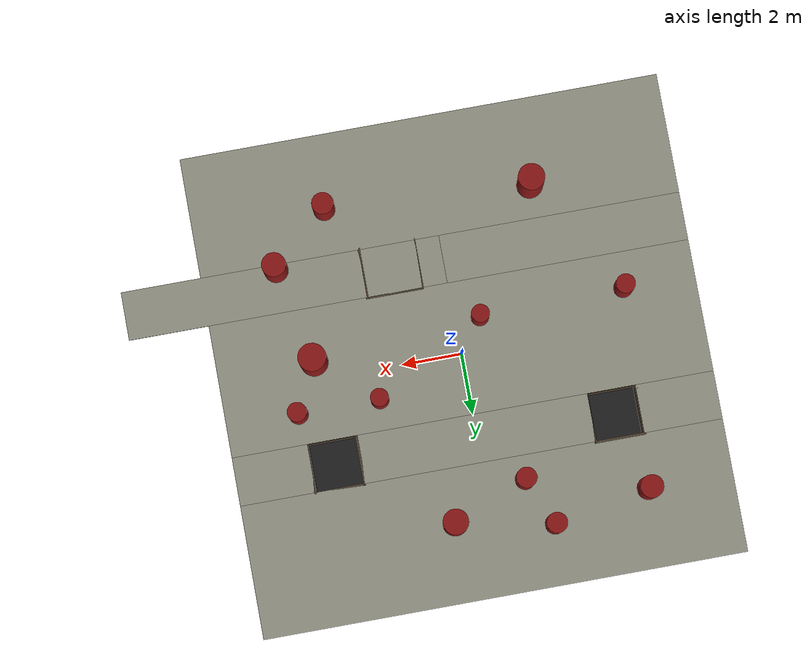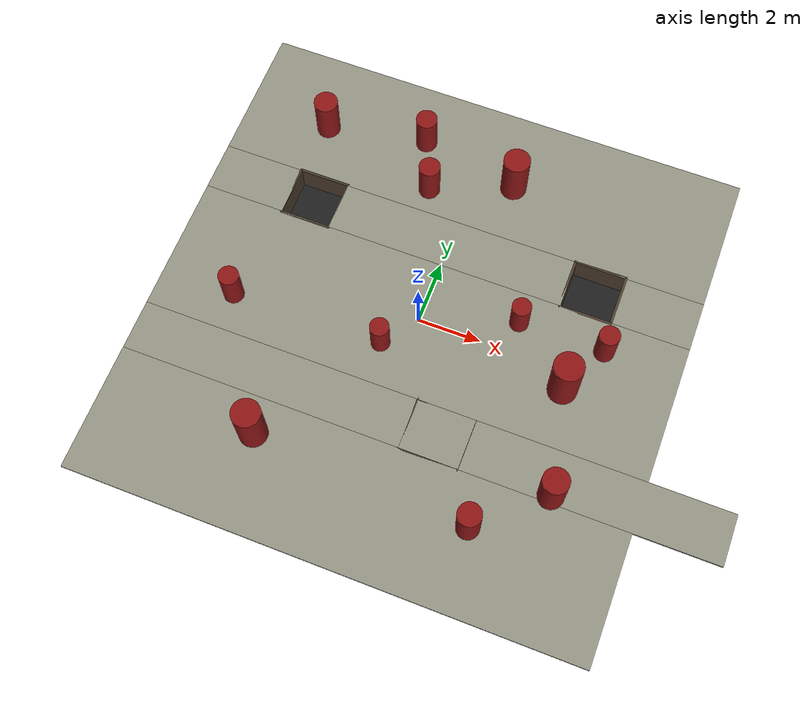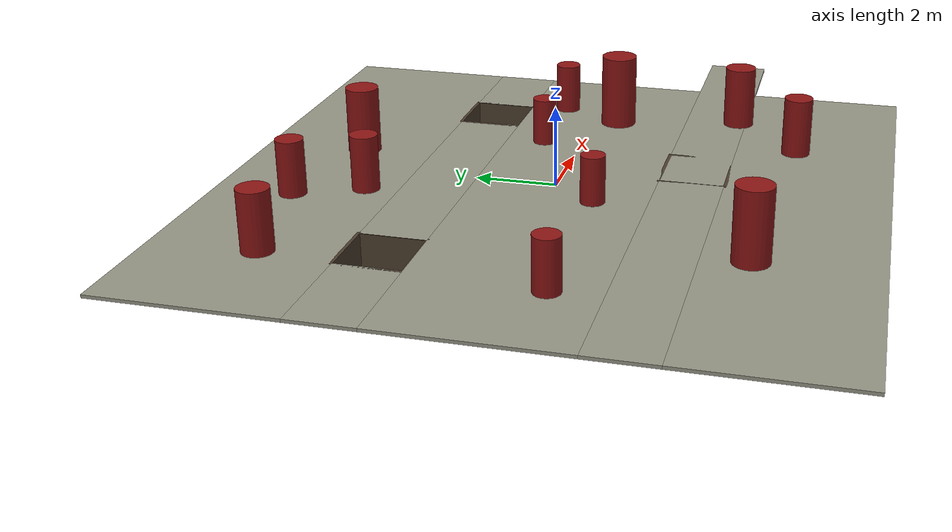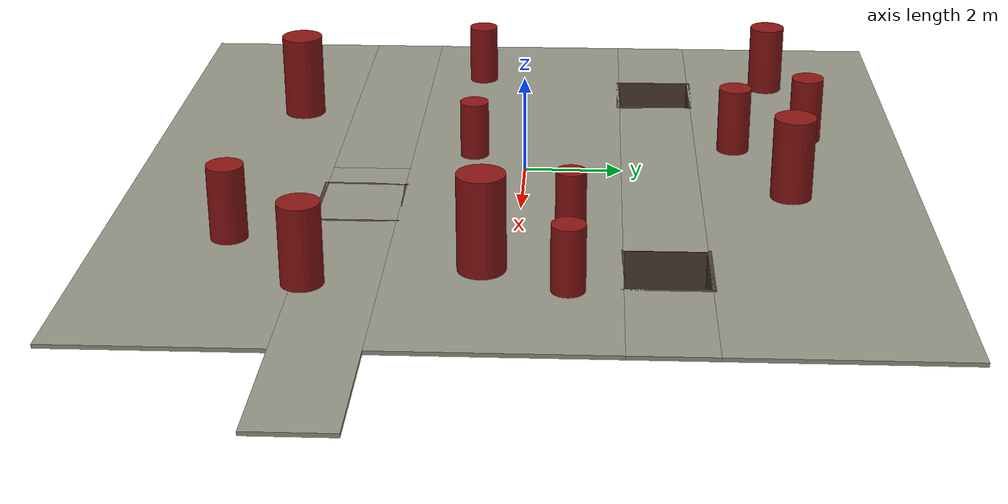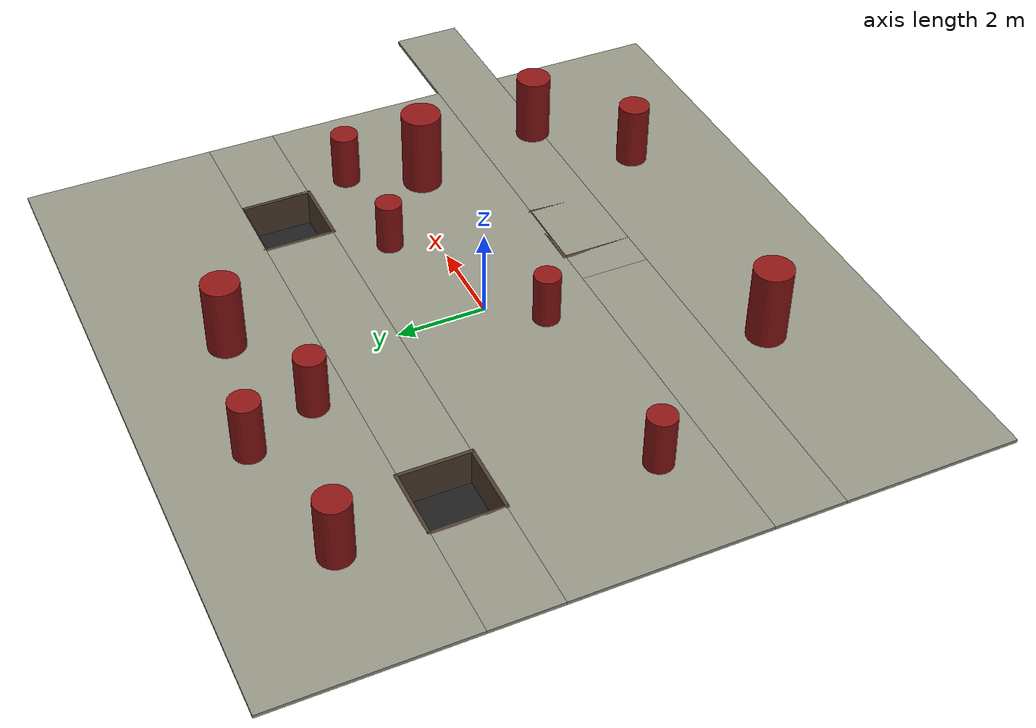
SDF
<?xml version="1.0"?>
<sdf version="1.6">
  <world name="putn_random_pit_column_test">
    <include>
      <uri>model://sun</uri>
    </include>

    <physics name="default_physics" type="ode">
      <max_step_size>0.001</max_step_size>
      <real_time_factor>1.0</real_time_factor>
      <real_time_update_rate>1000</real_time_update_rate>
    </physics>

    <model name="compact_floor_with_pit_openings">
      <static>true</static>

      <!-- Compact 16 m x 16 m test field. Floor slabs leave three real pit openings. -->
      <link name="south_floor">
        <pose>0 -6 -0.04 0 0 0</pose>
        <collision name="collision"><geometry><box><size>16.0 4.0 0.08</size></box></geometry></collision>
        <visual name="visual"><geometry><box><size>16.0 4.0 0.08</size></box></geometry><material><ambient>0.58 0.58 0.52 1</ambient><diffuse>0.58 0.58 0.52 1</diffuse></material></visual>
      </link>

      <link name="middle_floor">
        <pose>0 -0.2 -0.04 0 0 0</pose>
        <collision name="collision"><geometry><box><size>16.0 4.4 0.08</size></box></geometry></collision>
        <visual name="visual"><geometry><box><size>16.0 4.4 0.08</size></box></geometry><material><ambient>0.58 0.58 0.52 1</ambient><diffuse>0.58 0.58 0.52 1</diffuse></material></visual>
      </link>

      <link name="north_floor">
        <pose>0 5.8 -0.04 0 0 0</pose>
        <collision name="collision"><geometry><box><size>16.0 4.4 0.08</size></box></geometry></collision>
        <visual name="visual"><geometry><box><size>16.0 4.4 0.08</size></box></geometry><material><ambient>0.58 0.58 0.52 1</ambient><diffuse>0.58 0.58 0.52 1</diffuse></material></visual>
      </link>

      <link name="south_pit_row_left_floor">
        <pose>-3.55 -3.2 -0.04 0 0 0</pose>
        <collision name="collision"><geometry><box><size>8.9 1.6 0.08</size></box></geometry></collision>
        <visual name="visual"><geometry><box><size>8.9 1.6 0.08</size></box></geometry><material><ambient>0.58 0.58 0.52 1</ambient><diffuse>0.58 0.58 0.52 1</diffuse></material></visual>
      </link>

      <link name="south_pit_row_right_floor">
        <pose>5.35 -3.2 -0.04 0 0 0</pose>
        <collision name="collision"><geometry><box><size>10.6 1.6 0.08</size></box></geometry></collision>
        <visual name="visual"><geometry><box><size>10.6 1.6 0.08</size></box></geometry><material><ambient>0.58 0.58 0.52 1</ambient><diffuse>0.58 0.58 0.52 1</diffuse></material></visual>
      </link>

      <link name="north_pit_row_left_floor">
        <pose>-6.7 2.8 -0.04 0 0 0</pose>
        <collision name="collision"><geometry><box><size>2.6 1.6 0.08</size></box></geometry></collision>
        <visual name="visual"><geometry><box><size>2.6 1.6 0.08</size></box></geometry><material><ambient>0.58 0.58 0.52 1</ambient><diffuse>0.58 0.58 0.52 1</diffuse></material></visual>
      </link>

      <link name="north_pit_row_middle_floor">
        <pose>0.05 2.8 -0.04 0 0 0</pose>
        <collision name="collision"><geometry><box><size>7.7 1.6 0.08</size></box></geometry></collision>
        <visual name="visual"><geometry><box><size>7.7 1.6 0.08</size></box></geometry><material><ambient>0.58 0.58 0.52 1</ambient><diffuse>0.58 0.58 0.52 1</diffuse></material></visual>
      </link>

      <link name="north_pit_row_right_floor">
        <pose>6.75 2.8 -0.04 0 0 0</pose>
        <collision name="collision"><geometry><box><size>2.5 1.6 0.08</size></box></geometry></collision>
        <visual name="visual"><geometry><box><size>2.5 1.6 0.08</size></box></geometry><material><ambient>0.58 0.58 0.52 1</ambient><diffuse>0.58 0.58 0.52 1</diffuse></material></visual>
      </link>
    </model>

    <model name="deep_pits_randomized">
      <static>true</static>

      <!-- Pit A: northwest quadrant, 1.6 m x 1.6 m opening. -->
      <link name="pit_a_bottom">
        <pose>-4.6 2.8 -0.9 0 0 0</pose>
        <collision name="collision"><geometry><box><size>1.6 1.6 0.08</size></box></geometry></collision>
        <visual name="visual"><geometry><box><size>1.6 1.6 0.08</size></box></geometry><material><ambient>0.12 0.12 0.12 1</ambient><diffuse>0.12 0.12 0.12 1</diffuse></material></visual>
      </link>
      <link name="pit_a_north_wall">
        <pose>-4.6 3.62 -0.45 0 0 0</pose>
        <collision name="collision"><geometry><box><size>1.7 0.08 0.9</size></box></geometry></collision>
        <visual name="visual"><geometry><box><size>1.7 0.08 0.9</size></box></geometry><material><ambient>0.30 0.24 0.18 1</ambient><diffuse>0.30 0.24 0.18 1</diffuse></material></visual>
      </link>
      <link name="pit_a_south_wall">
        <pose>-4.6 1.98 -0.45 0 0 0</pose>
        <collision name="collision"><geometry><box><size>1.7 0.08 0.9</size></box></geometry></collision>
        <visual name="visual"><geometry><box><size>1.7 0.08 0.9</size></box></geometry><material><ambient>0.30 0.24 0.18 1</ambient><diffuse>0.30 0.24 0.18 1</diffuse></material></visual>
      </link>
      <link name="pit_a_east_wall">
        <pose>-3.78 2.8 -0.45 0 0 0</pose>
        <collision name="collision"><geometry><box><size>0.08 1.7 0.9</size></box></geometry></collision>
        <visual name="visual"><geometry><box><size>0.08 1.7 0.9</size></box></geometry><material><ambient>0.30 0.24 0.18 1</ambient><diffuse>0.30 0.24 0.18 1</diffuse></material></visual>
      </link>
      <link name="pit_a_west_wall">
        <pose>-5.42 2.8 -0.45 0 0 0</pose>
        <collision name="collision"><geometry><box><size>0.08 1.7 0.9</size></box></geometry></collision>
        <visual name="visual"><geometry><box><size>0.08 1.7 0.9</size></box></geometry><material><ambient>0.30 0.24 0.18 1</ambient><diffuse>0.30 0.24 0.18 1</diffuse></material></visual>
      </link>

      <!-- Pit B: south center, 1.8 m x 1.6 m opening. -->
      <link name="pit_b_bottom">
        <pose>1.8 -3.2 -0.9 0 0 0</pose>
        <collision name="collision"><geometry><box><size>1.8 1.6 0.08</size></box></geometry></collision>
        <visual name="visual"><geometry><box><size>1.8 1.6 0.08</size></box></geometry><material><ambient>0.12 0.12 0.12 1</ambient><diffuse>0.12 0.12 0.12 1</diffuse></material></visual>
      </link>
      <link name="pit_b_north_wall">
        <pose>1.8 -2.38 -0.45 0 0 0</pose>
        <collision name="collision"><geometry><box><size>1.9 0.08 0.9</size></box></geometry></collision>
        <visual name="visual"><geometry><box><size>1.9 0.08 0.9</size></box></geometry><material><ambient>0.30 0.24 0.18 1</ambient><diffuse>0.30 0.24 0.18 1</diffuse></material></visual>
      </link>
      <link name="pit_b_south_wall">
        <pose>1.8 -4.02 -0.45 0 0 0</pose>
        <collision name="collision"><geometry><box><size>1.9 0.08 0.9</size></box></geometry></collision>
        <visual name="visual"><geometry><box><size>1.9 0.08 0.9</size></box></geometry><material><ambient>0.30 0.24 0.18 1</ambient><diffuse>0.30 0.24 0.18 1</diffuse></material></visual>
      </link>
      <link name="pit_b_east_wall">
        <pose>2.72 -3.2 -0.45 0 0 0</pose>
        <collision name="collision"><geometry><box><size>0.08 1.7 0.9</size></box></geometry></collision>
        <visual name="visual"><geometry><box><size>0.08 1.7 0.9</size></box></geometry><material><ambient>0.30 0.24 0.18 1</ambient><diffuse>0.30 0.24 0.18 1</diffuse></material></visual>
      </link>
      <link name="pit_b_west_wall">
        <pose>0.88 -3.2 -0.45 0 0 0</pose>
        <collision name="collision"><geometry><box><size>0.08 1.7 0.9</size></box></geometry></collision>
        <visual name="visual"><geometry><box><size>0.08 1.7 0.9</size></box></geometry><material><ambient>0.30 0.24 0.18 1</ambient><diffuse>0.30 0.24 0.18 1</diffuse></material></visual>
      </link>

      <!-- Pit C: northeast quadrant, 1.6 m x 1.6 m opening. -->
      <link name="pit_c_bottom">
        <pose>4.7 2.8 -0.9 0 0 0</pose>
        <collision name="collision"><geometry><box><size>1.6 1.6 0.08</size></box></geometry></collision>
        <visual name="visual"><geometry><box><size>1.6 1.6 0.08</size></box></geometry><material><ambient>0.12 0.12 0.12 1</ambient><diffuse>0.12 0.12 0.12 1</diffuse></material></visual>
      </link>
      <link name="pit_c_north_wall">
        <pose>4.7 3.62 -0.45 0 0 0</pose>
        <collision name="collision"><geometry><box><size>1.7 0.08 0.9</size></box></geometry></collision>
        <visual name="visual"><geometry><box><size>1.7 0.08 0.9</size></box></geometry><material><ambient>0.30 0.24 0.18 1</ambient><diffuse>0.30 0.24 0.18 1</diffuse></material></visual>
      </link>
      <link name="pit_c_south_wall">
        <pose>4.7 1.98 -0.45 0 0 0</pose>
        <collision name="collision"><geometry><box><size>1.7 0.08 0.9</size></box></geometry></collision>
        <visual name="visual"><geometry><box><size>1.7 0.08 0.9</size></box></geometry><material><ambient>0.30 0.24 0.18 1</ambient><diffuse>0.30 0.24 0.18 1</diffuse></material></visual>
      </link>
      <link name="pit_c_east_wall">
        <pose>5.52 2.8 -0.45 0 0 0</pose>
        <collision name="collision"><geometry><box><size>0.08 1.7 0.9</size></box></geometry></collision>
        <visual name="visual"><geometry><box><size>0.08 1.7 0.9</size></box></geometry><material><ambient>0.30 0.24 0.18 1</ambient><diffuse>0.30 0.24 0.18 1</diffuse></material></visual>
      </link>
      <link name="pit_c_west_wall">
        <pose>3.88 2.8 -0.45 0 0 0</pose>
        <collision name="collision"><geometry><box><size>0.08 1.7 0.9</size></box></geometry></collision>
        <visual name="visual"><geometry><box><size>0.08 1.7 0.9</size></box></geometry><material><ambient>0.30 0.24 0.18 1</ambient><diffuse>0.30 0.24 0.18 1</diffuse></material></visual>
      </link>
    </model>

    <model name="random_column_obstacles">
      <static>true</static>

      <link name="column_01"><pose>-5.6 -1.2 0.65 0 0 0</pose><collision name="collision"><geometry><cylinder><radius>0.32</radius><length>1.3</length></cylinder></geometry></collision><visual name="visual"><geometry><cylinder><radius>0.32</radius><length>1.3</length></cylinder></geometry><material><ambient>0.55 0.08 0.08 1</ambient><diffuse>0.55 0.08 0.08 1</diffuse></material></visual></link>
      <link name="column_02"><pose>-5.2 5.4 0.75 0 0 0</pose><collision name="collision"><geometry><cylinder><radius>0.38</radius><length>1.5</length></cylinder></geometry></collision><visual name="visual"><geometry><cylinder><radius>0.38</radius><length>1.5</length></cylinder></geometry><material><ambient>0.55 0.08 0.08 1</ambient><diffuse>0.55 0.08 0.08 1</diffuse></material></visual></link>
      <link name="column_03"><pose>-3.2 -5.1 0.9 0 0 0</pose><collision name="collision"><geometry><cylinder><radius>0.44</radius><length>1.8</length></cylinder></geometry></collision><visual name="visual"><geometry><cylinder><radius>0.44</radius><length>1.8</length></cylinder></geometry><material><ambient>0.55 0.08 0.08 1</ambient><diffuse>0.55 0.08 0.08 1</diffuse></material></visual></link>
      <link name="column_04"><pose>-1.3 4.4 0.7 0 0 0</pose><collision name="collision"><geometry><cylinder><radius>0.34</radius><length>1.4</length></cylinder></geometry></collision><visual name="visual"><geometry><cylinder><radius>0.34</radius><length>1.4</length></cylinder></geometry><material><ambient>0.55 0.08 0.08 1</ambient><diffuse>0.55 0.08 0.08 1</diffuse></material></visual></link>
      <link name="column_05"><pose>-0.8 -1.1 0.6 0 0 0</pose><collision name="collision"><geometry><cylinder><radius>0.30</radius><length>1.2</length></cylinder></geometry></collision><visual name="visual"><geometry><cylinder><radius>0.30</radius><length>1.2</length></cylinder></geometry><material><ambient>0.55 0.08 0.08 1</ambient><diffuse>0.55 0.08 0.08 1</diffuse></material></visual></link>
      <link name="column_06"><pose>1.2 5.4 0.85 0 0 0</pose><collision name="collision"><geometry><cylinder><radius>0.42</radius><length>1.7</length></cylinder></geometry></collision><visual name="visual"><geometry><cylinder><radius>0.42</radius><length>1.7</length></cylinder></geometry><material><ambient>0.55 0.08 0.08 1</ambient><diffuse>0.55 0.08 0.08 1</diffuse></material></visual></link>
      <link name="column_07"><pose>3.6 -5.5 0.75 0 0 0</pose><collision name="collision"><geometry><cylinder><radius>0.36</radius><length>1.5</length></cylinder></geometry></collision><visual name="visual"><geometry><cylinder><radius>0.36</radius><length>1.5</length></cylinder></geometry><material><ambient>0.55 0.08 0.08 1</ambient><diffuse>0.55 0.08 0.08 1</diffuse></material></visual></link>
      <link name="column_08"><pose>4.8 -0.6 0.95 0 0 0</pose><collision name="collision"><geometry><cylinder><radius>0.46</radius><length>1.9</length></cylinder></geometry></collision><visual name="visual"><geometry><cylinder><radius>0.46</radius><length>1.9</length></cylinder></geometry><material><ambient>0.55 0.08 0.08 1</ambient><diffuse>0.55 0.08 0.08 1</diffuse></material></visual></link>
      <link name="column_09"><pose>5.6 1.0 0.65 0 0 0</pose><collision name="collision"><geometry><cylinder><radius>0.32</radius><length>1.3</length></cylinder></geometry></collision><visual name="visual"><geometry><cylinder><radius>0.32</radius><length>1.3</length></cylinder></geometry><material><ambient>0.55 0.08 0.08 1</ambient><diffuse>0.55 0.08 0.08 1</diffuse></material></visual></link>
      <link name="column_10"><pose>5.5 -3.8 0.8 0 0 0</pose><collision name="collision"><geometry><cylinder><radius>0.40</radius><length>1.6</length></cylinder></geometry></collision><visual name="visual"><geometry><cylinder><radius>0.40</radius><length>1.6</length></cylinder></geometry><material><ambient>0.55 0.08 0.08 1</ambient><diffuse>0.55 0.08 0.08 1</diffuse></material></visual></link>
      <link name="column_11"><pose>-2.0 6.0 0.7 0 0 0</pose><collision name="collision"><geometry><cylinder><radius>0.34</radius><length>1.4</length></cylinder></geometry></collision><visual name="visual"><geometry><cylinder><radius>0.34</radius><length>1.4</length></cylinder></geometry><material><ambient>0.55 0.08 0.08 1</ambient><diffuse>0.55 0.08 0.08 1</diffuse></material></visual></link>
      <link name="column_12"><pose>2.9 1.0 0.6 0 0 0</pose><collision name="collision"><geometry><cylinder><radius>0.30</radius><length>1.2</length></cylinder></geometry></collision><visual name="visual"><geometry><cylinder><radius>0.30</radius><length>1.2</length></cylinder></geometry><material><ambient>0.55 0.08 0.08 1</ambient><diffuse>0.55 0.08 0.08 1</diffuse></material></visual></link>
    </model>
  </world>
</sdf>
